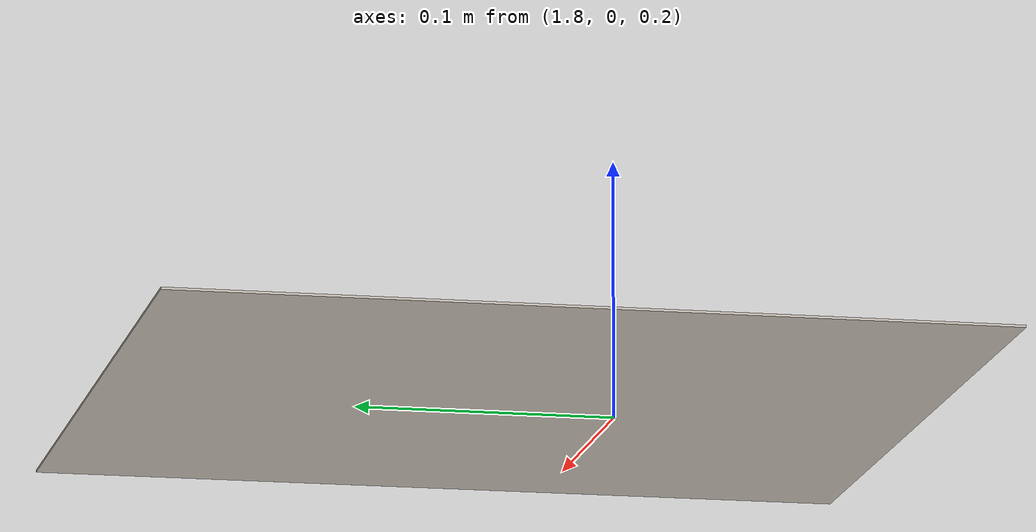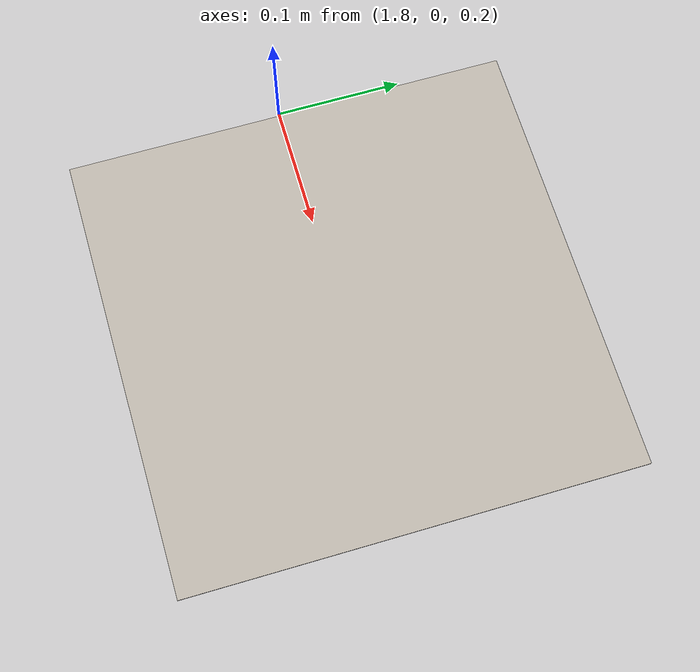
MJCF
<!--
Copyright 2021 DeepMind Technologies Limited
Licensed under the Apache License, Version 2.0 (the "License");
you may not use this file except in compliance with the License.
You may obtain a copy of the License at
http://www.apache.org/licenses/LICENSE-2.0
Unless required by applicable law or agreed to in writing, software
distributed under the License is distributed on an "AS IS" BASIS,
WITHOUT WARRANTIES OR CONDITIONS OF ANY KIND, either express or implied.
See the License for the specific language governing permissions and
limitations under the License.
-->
<mujoco>
    <option timestep="0.005" solver="Newton" iterations="30" tolerance="1e-10"/>

    <asset>
        <texture name="apriltag_texture" type="2d" file="tag_36h11_0.png"/>
        <material name="apriltag_material" texture="apriltag_texture"/>
    </asset>

    <worldbody>
        <body mocap="true" pos="2 0 0.25" quat="0.707 0 0 0.707" zaxis="-1 0 0">
            <geom type="box" size=".17 .17 0.0005" material="apriltag_material"/>
        </body>
    </worldbody>
</mujoco>
